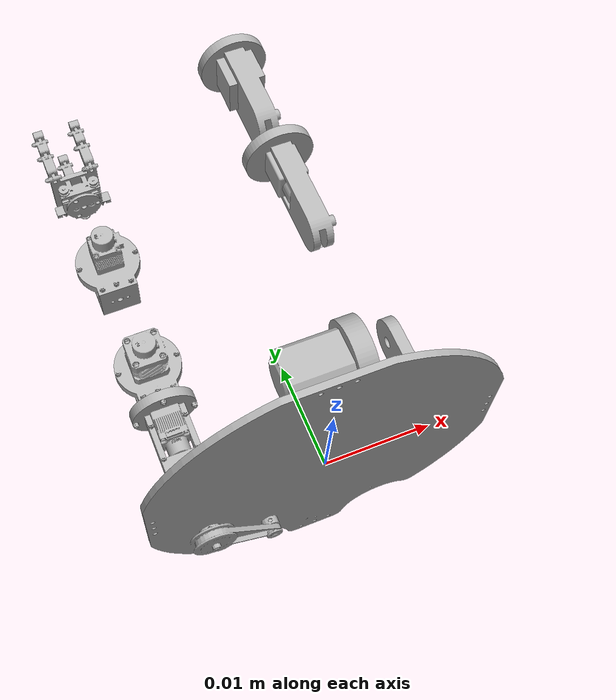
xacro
<?xml version="1.0" ?>
<robot name="arm2_v4" xmlns:xacro="http://www.ros.org/wiki/xacro">

<xacro:include filename="$(find arm2_v4_description)/urdf/materials.xacro" />
<xacro:include filename="$(find arm2_v4_description)/urdf/arm2_v4.trans" />
<xacro:include filename="$(find arm2_v4_description)/urdf/arm2_v4.gazebo" />
<link name="base_link">
  <inertial>
    <origin xyz="-0.01036605995280163 0.008118725780222396 -0.010698521307181049" rpy="0 0 0"/>
    <mass value="0.6714813076324946"/>
    <inertia ixx="0.004693" iyy="0.009008" izz="0.004597" ixy="0.000126" iyz="0.000275" ixz="-0.00051"/>
  </inertial>
  <visual>
    <origin xyz="0 0 0" rpy="0 0 0"/>
    <geometry>
      <mesh filename="package://arm2_v4_description/meshes/base_link.stl" scale="0.001 0.001 0.001"/>
    </geometry>
    <material name="silver"/>
  </visual>
  <collision>
    <origin xyz="0 0 0" rpy="0 0 0"/>
    <geometry>
      <mesh filename="package://arm2_v4_description/meshes/base_link.stl" scale="0.001 0.001 0.001"/>
    </geometry>
  </collision>
</link>

<link name="link_1">
  <inertial>
    <origin xyz="0.000994555873334066 0.032192633992419506 0.034631373816010426" rpy="0 0 0"/>
    <mass value="0.14794989873959544"/>
    <inertia ixx="0.000146" iyy="0.000139" izz="6.1e-05" ixy="-0.0" iyz="-1.9e-05" ixz="-4e-06"/>
  </inertial>
  <visual>
    <origin xyz="0.1101 -0.00635 0.0551" rpy="0 0 0"/>
    <geometry>
      <mesh filename="package://arm2_v4_description/meshes/link_1.stl" scale="0.001 0.001 0.001"/>
    </geometry>
    <material name="silver"/>
  </visual>
  <collision>
    <origin xyz="0.1101 -0.00635 0.0551" rpy="0 0 0"/>
    <geometry>
      <mesh filename="package://arm2_v4_description/meshes/link_1.stl" scale="0.001 0.001 0.001"/>
    </geometry>
  </collision>
</link>

<link name="link_2">
  <inertial>
    <origin xyz="-4.2329454017026036e-05 0.04921562557214742 0.0030738533730362907" rpy="0 0 0"/>
    <mass value="0.08725155707785047"/>
    <inertia ixx="9.1e-05" iyy="2.6e-05" izz="9.6e-05" ixy="0.0" iyz="-0.0" ixz="0.0"/>
  </inertial>
  <visual>
    <origin xyz="0.1101 -0.041967 0.0581" rpy="0 0 0"/>
    <geometry>
      <mesh filename="package://arm2_v4_description/meshes/link_2.stl" scale="0.001 0.001 0.001"/>
    </geometry>
    <material name="silver"/>
  </visual>
  <collision>
    <origin xyz="0.1101 -0.041967 0.0581" rpy="0 0 0"/>
    <geometry>
      <mesh filename="package://arm2_v4_description/meshes/link_2.stl" scale="0.001 0.001 0.001"/>
    </geometry>
  </collision>
</link>

<link name="link_3">
  <inertial>
    <origin xyz="-1.3823380757296833e-05 0.03022438867696911 0.0200511494227781" rpy="0 0 0"/>
    <mass value="0.09108039665669564"/>
    <inertia ixx="7.1e-05" iyy="6.2e-05" izz="3.8e-05" ixy="0.0" iyz="-1.2e-05" ixz="0.0"/>
  </inertial>
  <visual>
    <origin xyz="0.1101 -0.130967 0.0551" rpy="0 0 0"/>
    <geometry>
      <mesh filename="package://arm2_v4_description/meshes/link_3.stl" scale="0.001 0.001 0.001"/>
    </geometry>
    <material name="silver"/>
  </visual>
  <collision>
    <origin xyz="0.1101 -0.130967 0.0551" rpy="0 0 0"/>
    <geometry>
      <mesh filename="package://arm2_v4_description/meshes/link_3.stl" scale="0.001 0.001 0.001"/>
    </geometry>
  </collision>
</link>

<link name="link_4">
  <inertial>
    <origin xyz="-4.232946611194832e-05 0.04912810644241655 0.0030738548296062526" rpy="0 0 0"/>
    <mass value="0.08725154796869071"/>
    <inertia ixx="9.1e-05" iyy="2.6e-05" izz="9.6e-05" ixy="-0.0" iyz="-0.0" ixz="0.0"/>
  </inertial>
  <visual>
    <origin xyz="0.1101 -0.166585 0.0581" rpy="0 0 0"/>
    <geometry>
      <mesh filename="package://arm2_v4_description/meshes/link_4.stl" scale="0.001 0.001 0.001"/>
    </geometry>
    <material name="silver"/>
  </visual>
  <collision>
    <origin xyz="0.1101 -0.166585 0.0581" rpy="0 0 0"/>
    <geometry>
      <mesh filename="package://arm2_v4_description/meshes/link_4.stl" scale="0.001 0.001 0.001"/>
    </geometry>
  </collision>
</link>

<link name="link_5">
  <inertial>
    <origin xyz="6.10956164850962e-05 0.029339323281606933 0.01790395437814605" rpy="0 0 0"/>
    <mass value="0.07748637354366847"/>
    <inertia ixx="6.5e-05" iyy="5.7e-05" izz="3.4e-05" ixy="-0.0" iyz="-1e-05" ixz="-0.0"/>
  </inertial>
  <visual>
    <origin xyz="0.1101 -0.255585 0.0551" rpy="0 0 0"/>
    <geometry>
      <mesh filename="package://arm2_v4_description/meshes/link_5.stl" scale="0.001 0.001 0.001"/>
    </geometry>
    <material name="silver"/>
  </visual>
  <collision>
    <origin xyz="0.1101 -0.255585 0.0551" rpy="0 0 0"/>
    <geometry>
      <mesh filename="package://arm2_v4_description/meshes/link_5.stl" scale="0.001 0.001 0.001"/>
    </geometry>
  </collision>
</link>

<link name="link_6">
  <inertial>
    <origin xyz="6.94042323612365e-10 0.04917111509824407 0.0030728246091055456" rpy="0 0 0"/>
    <mass value="0.08703493547283644"/>
    <inertia ixx="9.1e-05" iyy="2.6e-05" izz="9.6e-05" ixy="0.0" iyz="-0.0" ixz="0.0"/>
  </inertial>
  <visual>
    <origin xyz="0.1101 -0.291202 0.0581" rpy="0 0 0"/>
    <geometry>
      <mesh filename="package://arm2_v4_description/meshes/link_6.stl" scale="0.001 0.001 0.001"/>
    </geometry>
    <material name="silver"/>
  </visual>
  <collision>
    <origin xyz="0.1101 -0.291202 0.0581" rpy="0 0 0"/>
    <geometry>
      <mesh filename="package://arm2_v4_description/meshes/link_6.stl" scale="0.001 0.001 0.001"/>
    </geometry>
  </collision>
</link>

<link name="gripper">
  <inertial>
    <origin xyz="-0.0005353018688132316 0.026155963757639344 0.0035069621346659544" rpy="0 0 0"/>
    <mass value="0.050171472872319836"/>
    <inertia ixx="4.4e-05" iyy="2.5e-05" izz="3.8e-05" ixy="0.0" iyz="-3e-06" ixz="0.0"/>
  </inertial>
  <visual>
    <origin xyz="0.1101 -0.380202 0.0551" rpy="0 0 0"/>
    <geometry>
      <mesh filename="package://arm2_v4_description/meshes/gripper.stl" scale="0.001 0.001 0.001"/>
    </geometry>
    <material name="silver"/>
  </visual>
  <collision>
    <origin xyz="0.1101 -0.380202 0.0551" rpy="0 0 0"/>
    <geometry>
      <mesh filename="package://arm2_v4_description/meshes/gripper.stl" scale="0.001 0.001 0.001"/>
    </geometry>
  </collision>
</link>

<joint name="joint" type="revolute">
  <origin xyz="-0.1101 0.00635 -0.0551" rpy="0 0 0"/>
  <parent link="base_link"/>
  <child link="link_1"/>
  <axis xyz="-0.0 -1.0 0.0"/>
  <limit upper="3.141593" lower="-1.047198" effort="100" velocity="100"/>
</joint>

<joint name="joint_2" type="revolute">
  <origin xyz="0.0 0.035617 -0.003" rpy="0 0 0"/>
  <parent link="link_1"/>
  <child link="link_2"/>
  <axis xyz="0.0 0.0 1.0"/>
  <limit upper="1.570796" lower="-1.570796" effort="100" velocity="100"/>
</joint>

<joint name="joint_3" type="continuous">
  <origin xyz="0.0 0.089 0.003" rpy="0 0 0"/>
  <parent link="link_2"/>
  <child link="link_3"/>
  <axis xyz="-0.0 1.0 -0.0"/>
</joint>

<joint name="joint_4" type="revolute">
  <origin xyz="0.0 0.035618 -0.003" rpy="0 0 0"/>
  <parent link="link_3"/>
  <child link="link_4"/>
  <axis xyz="0.0 -0.0 1.0"/>
  <limit upper="1.919862" lower="-1.919862" effort="100" velocity="100"/>
</joint>

<joint name="joint_5" type="continuous">
  <origin xyz="0.0 0.089 0.003" rpy="0 0 0"/>
  <parent link="link_4"/>
  <child link="link_5"/>
  <axis xyz="-0.0 1.0 -0.0"/>
</joint>

<joint name="joint_6" type="revolute">
  <origin xyz="0.0 0.035617 -0.003" rpy="0 0 0"/>
  <parent link="link_5"/>
  <child link="link_6"/>
  <axis xyz="-0.0 -0.0 1.0"/>
  <limit upper="1.919862" lower="-1.919862" effort="100" velocity="100"/>
</joint>

<joint name="joint_7" type="continuous">
  <origin xyz="0.0 0.089 0.003" rpy="0 0 0"/>
  <parent link="link_6"/>
  <child link="gripper"/>
  <axis xyz="-0.0 1.0 -0.0"/>
</joint>

</robot>

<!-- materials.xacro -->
<robot name="arm2_v4" xmlns:xacro="http://www.ros.org/wiki/xacro" >

<material name="silver">
  <color rgba="0.700 0.700 0.700 1.000"/>
</material>

</robot>
